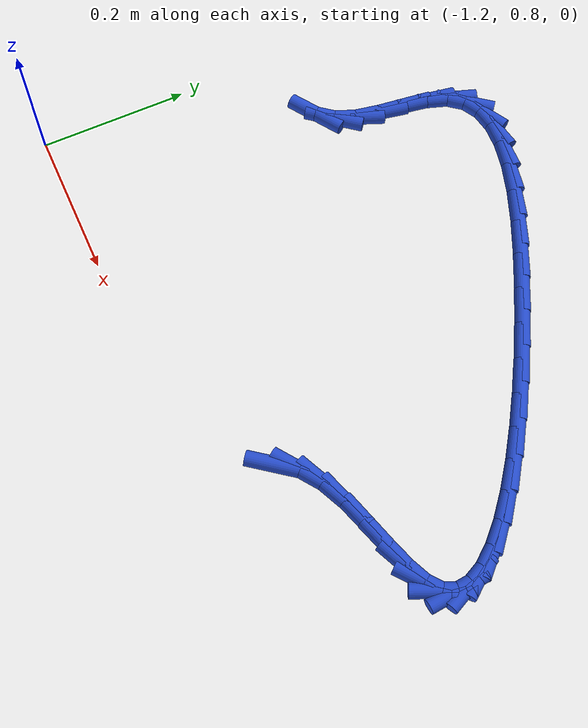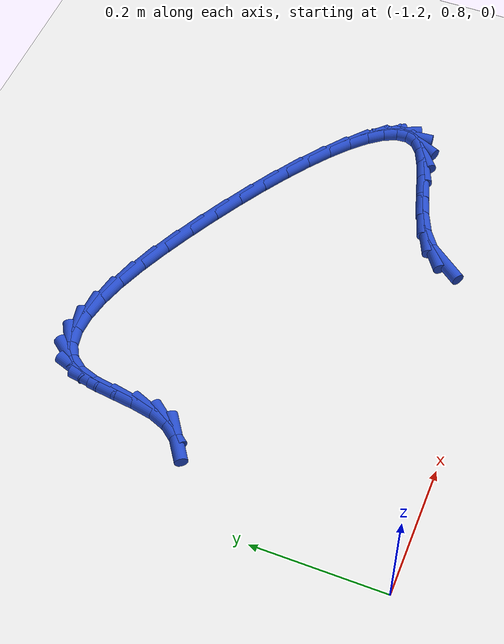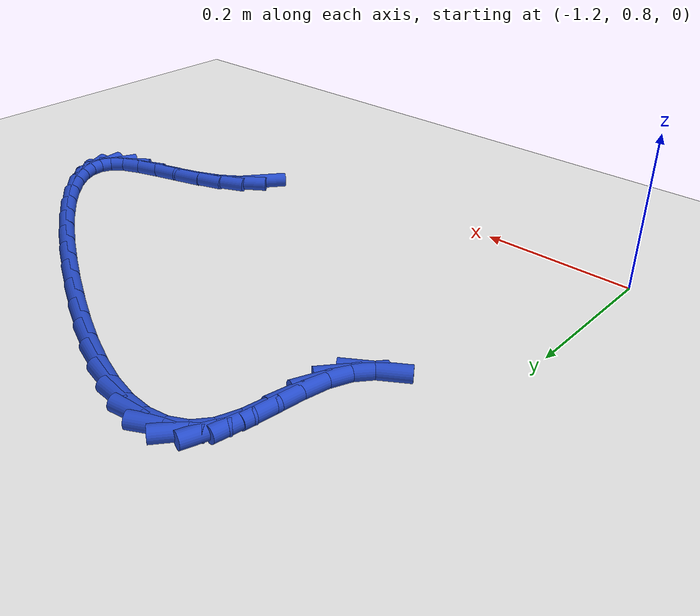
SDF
<sdf version="1.6">
 <world name="default">
  <model name="ground_plane">
   <static>1</static>
   <link name="link">
    <collision name="collision">
     <geometry><plane><normal>0 0 1</normal><size>100 100</size></plane></geometry>
     <surface><friction><ode><mu>100</mu><mu2>50</mu2></ode></friction></surface>
    </collision>
    <visual name="visual">
     <cast_shadows>0</cast_shadows>
     <geometry><plane><normal>0 0 1</normal><size>100 100</size></plane></geometry>
     <material>
      <script><uri>file://media/materials/scripts/gazebo.material</uri><name>Gazebo/WhiteGlow</name></script>
     </material>
    </visual>
   </link>
  </model>
  <model name="line">
   <link name="link_36">
    <pose>-0.6546489635974158 0.9010122230045716 0.01 0 1.57 0.9197699224399859</pose>
    <collision name="collision">
     <geometry><cylinder><radius>0.01</radius><length>0.08</length></cylinder></geometry>
    </collision>
    <visual name="visual">
     <material>
      <script><name>Gazebo/Blue</name><uri>file://media/materials/scripts/gazebo.material</uri></script>
     </material>
     <geometry><cylinder><radius>0.01</radius><length>0.08</length></cylinder></geometry>
    </visual>
   </link>
   <link name="link_37">
    <pose>-0.6371269394670711 0.9240122802838328 0.01 0 1.57 0.6194473717503187</pose>
    <collision name="collision">
     <geometry><cylinder><radius>0.01</radius><length>0.08</length></cylinder></geometry>
    </collision>
    <visual name="visual">
     <material>
      <script><name>Gazebo/Blue</name><uri>file://media/materials/scripts/gazebo.material</uri></script>
     </material>
     <geometry><cylinder><radius>0.01</radius><length>0.08</length></cylinder></geometry>
    </visual>
   </link>
   <link name="link_38">
    <pose>-0.6114537484375069 0.9423191922987368 0.01 0 1.57 0.42852501772104457</pose>
    <collision name="collision">
     <geometry><cylinder><radius>0.01</radius><length>0.08</length></cylinder></geometry>
    </collision>
    <visual name="visual">
     <material>
      <script><name>Gazebo/Blue</name><uri>file://media/materials/scripts/gazebo.material</uri></script>
     </material>
     <geometry><cylinder><radius>0.01</radius><length>0.08</length></cylinder></geometry>
    </visual>
   </link>
   <link name="link_39">
    <pose>-0.5798503829352134 0.9567567792665215 0.01 0 1.57 0.32914970800333143</pose>
    <collision name="collision">
     <geometry><cylinder><radius>0.01</radius><length>0.08</length></cylinder></geometry>
    </collision>
    <visual name="visual">
     <material>
      <script><name>Gazebo/Blue</name><uri>file://media/materials/scripts/gazebo.material</uri></script>
     </material>
     <geometry><cylinder><radius>0.01</radius><length>0.08</length></cylinder></geometry>
    </visual>
   </link>
   <link name="link_40">
    <pose>-0.5452840911622212 0.9685637635891405 0.01 0 1.57 0.2926945093638431</pose>
    <collision name="collision">
     <geometry><cylinder><radius>0.01</radius><length>0.08</length></cylinder></geometry>
    </collision>
    <visual name="visual">
     <material>
      <script><name>Gazebo/Blue</name><uri>file://media/materials/scripts/gazebo.material</uri></script>
     </material>
     <geometry><cylinder><radius>0.01</radius><length>0.08</length></cylinder></geometry>
    </visual>
   </link>
   <link name="link_41">
    <pose>-0.5107222753914705 0.9789789533286649 0.01 0 1.57 0.31410229428454683</pose>
    <collision name="collision">
     <geometry><cylinder><radius>0.01</radius><length>0.08</length></cylinder></geometry>
    </collision>
    <visual name="visual">
     <material>
      <script><name>Gazebo/Blue</name><uri>file://media/materials/scripts/gazebo.material</uri></script>
     </material>
     <geometry><cylinder><radius>0.01</radius><length>0.08</length></cylinder></geometry>
    </visual>
   </link>
   <link name="link_42">
    <pose>-0.4791323378959036 0.9892411565471664 0.01 0 1.57 0.4165214956059197</pose>
    <collision name="collision">
     <geometry><cylinder><radius>0.01</radius><length>0.08</length></cylinder></geometry>
    </collision>
    <visual name="visual">
     <material>
      <script><name>Gazebo/Blue</name><uri>file://media/materials/scripts/gazebo.material</uri></script>
     </material>
     <geometry><cylinder><radius>0.01</radius><length>0.08</length></cylinder></geometry>
    </visual>
   </link>
   <link name="link_43">
    <pose>-0.45348168094846103 1.0005891813067163 0.01 0 1.57 0.6797086663926685</pose>
    <collision name="collision">
     <geometry><cylinder><radius>0.01</radius><length>0.08</length></cylinder></geometry>
    </collision>
    <visual name="visual">
     <material>
      <script><name>Gazebo/Blue</name><uri>file://media/materials/scripts/gazebo.material</uri></script>
     </material>
     <geometry><cylinder><radius>0.01</radius><length>0.08</length></cylinder></geometry>
    </visual>
   </link>
   <link name="link_44">
    <pose>-0.43662278552695 1.0142141973778662 0.01 0 1.57 1.1543749748583172</pose>
    <collision name="collision">
     <geometry><cylinder><radius>0.01</radius><length>0.08</length></cylinder></geometry>
    </collision>
    <visual name="visual">
     <material>
      <script><name>Gazebo/Blue</name><uri>file://media/materials/scripts/gazebo.material</uri></script>
     </material>
     <geometry><cylinder><radius>0.01</radius><length>0.08</length></cylinder></geometry>
    </visual>
   </link>
   <link name="link_45">
    <pose>-0.4294260853999631 1.0304857570698576 0.01 0 1.57 -1.481563053469985</pose>
    <collision name="collision">
     <geometry><cylinder><radius>0.01</radius><length>0.08</length></cylinder></geometry>
    </collision>
    <visual name="visual">
     <material>
      <script><name>Gazebo/Blue</name><uri>file://media/materials/scripts/gazebo.material</uri></script>
     </material>
     <geometry><cylinder><radius>0.01</radius><length>0.08</length></cylinder></geometry>
    </visual>
   </link>
   <link name="link_46">
    <pose>-0.431089747169748 1.0490802082629678 0.01 0 1.57 -1.1313971508245861</pose>
    <collision name="collision">
     <geometry><cylinder><radius>0.01</radius><length>0.08</length></cylinder></geometry>
    </collision>
    <visual name="visual">
     <material>
      <script><name>Gazebo/Blue</name><uri>file://media/materials/scripts/gazebo.material</uri></script>
     </material>
     <geometry><cylinder><radius>0.01</radius><length>0.08</length></cylinder></geometry>
    </visual>
   </link>
   <link name="link_47">
    <pose>-0.440759533652331 1.069652175910996 0.01 0 1.57 -0.9224534851953125</pose>
    <collision name="collision">
     <geometry><cylinder><radius>0.01</radius><length>0.08</length></cylinder></geometry>
    </collision>
    <visual name="visual">
     <material>
      <script><name>Gazebo/Blue</name><uri>file://media/materials/scripts/gazebo.material</uri></script>
     </material>
     <geometry><cylinder><radius>0.01</radius><length>0.08</length></cylinder></geometry>
    </visual>
   </link>
   <link name="link_48">
    <pose>-0.45758120766373794 1.091856284967744 0.01 0 1.57 -0.7933694485484077</pose>
    <collision name="collision">
     <geometry><cylinder><radius>0.01</radius><length>0.08</length></cylinder></geometry>
    </collision>
    <visual name="visual">
     <material>
      <script><name>Gazebo/Blue</name><uri>file://media/materials/scripts/gazebo.material</uri></script>
     </material>
     <geometry><cylinder><radius>0.01</radius><length>0.08</length></cylinder></geometry>
    </visual>
   </link>
   <link name="link_49">
    <pose>-0.4807005320199945 1.115347160387011 0.01 0 1.57 -0.7076146568592331</pose>
    <collision name="collision">
     <geometry><cylinder><radius>0.01</radius><length>0.08</length></cylinder></geometry>
    </collision>
    <visual name="visual">
     <material>
      <script><name>Gazebo/Blue</name><uri>file://media/materials/scripts/gazebo.material</uri></script>
     </material>
     <geometry><cylinder><radius>0.01</radius><length>0.08</length></cylinder></geometry>
    </visual>
   </link>
   <link name="link_50">
    <pose>-0.509263269537127 1.1397794271225987 0.01 0 1.57 -0.646666313776083</pose>
    <collision name="collision">
     <geometry><cylinder><radius>0.01</radius><length>0.08</length></cylinder></geometry>
    </collision>
    <visual name="visual">
     <material>
      <script><name>Gazebo/Blue</name><uri>file://media/materials/scripts/gazebo.material</uri></script>
     </material>
     <geometry><cylinder><radius>0.01</radius><length>0.08</length></cylinder></geometry>
    </visual>
   </link>
   <link name="link_51">
    <pose>-0.5424151830311605 1.1648077101283063 0.01 0 1.57 -0.6007986333091562</pose>
    <collision name="collision">
     <geometry><cylinder><radius>0.01</radius><length>0.08</length></cylinder></geometry>
    </collision>
    <visual name="visual">
     <material>
      <script><name>Gazebo/Blue</name><uri>file://media/materials/scripts/gazebo.material</uri></script>
     </material>
     <geometry><cylinder><radius>0.01</radius><length>0.08</length></cylinder></geometry>
    </visual>
   </link>
   <link name="link_52">
    <pose>-0.5793020353181219 1.190086634357935 0.01 0 1.57 -0.5645348074314845</pose>
    <collision name="collision">
     <geometry><cylinder><radius>0.01</radius><length>0.08</length></cylinder></geometry>
    </collision>
    <visual name="visual">
     <material>
      <script><name>Gazebo/Blue</name><uri>file://media/materials/scripts/gazebo.material</uri></script>
     </material>
     <geometry><cylinder><radius>0.01</radius><length>0.08</length></cylinder></geometry>
    </visual>
   </link>
   <link name="link_53">
    <pose>-0.619069589214036 1.2152708247652846 0.01 0 1.57 -0.5345522174541816</pose>
    <collision name="collision">
     <geometry><cylinder><radius>0.01</radius><length>0.08</length></cylinder></geometry>
    </collision>
    <visual name="visual">
     <material>
      <script><name>Gazebo/Blue</name><uri>file://media/materials/scripts/gazebo.material</uri></script>
     </material>
     <geometry><cylinder><radius>0.01</radius><length>0.08</length></cylinder></geometry>
    </visual>
   </link>
   <link name="link_54">
    <pose>-0.6608636075349292 1.2400149063041555 0.01 0 1.57 -0.5086704039617261</pose>
    <collision name="collision">
     <geometry><cylinder><radius>0.01</radius><length>0.08</length></cylinder></geometry>
    </collision>
    <visual name="visual">
     <material>
      <script><name>Gazebo/Blue</name><uri>file://media/materials/scripts/gazebo.material</uri></script>
     </material>
     <geometry><cylinder><radius>0.01</radius><length>0.08</length></cylinder></geometry>
    </visual>
   </link>
   <link name="link_55">
    <pose>-0.7038298530968277 1.2639735039283484 0.01 0 1.57 -0.4852911438079115</pose>
    <collision name="collision">
     <geometry><cylinder><radius>0.01</radius><length>0.08</length></cylinder></geometry>
    </collision>
    <visual name="visual">
     <material>
      <script><name>Gazebo/Blue</name><uri>file://media/materials/scripts/gazebo.material</uri></script>
     </material>
     <geometry><cylinder><radius>0.01</radius><length>0.08</length></cylinder></geometry>
    </visual>
   </link>
   <link name="link_56">
    <pose>-0.7471146786405525 1.2867999608270342 0.01 0 1.57 -0.45991084315033526</pose>
    <collision name="collision">
     <geometry><cylinder><radius>0.01</radius><length>0.08</length></cylinder></geometry>
    </collision>
    <visual name="visual">
     <material>
      <script><name>Gazebo/Blue</name><uri>file://media/materials/scripts/gazebo.material</uri></script>
     </material>
     <geometry><cylinder><radius>0.01</radius><length>0.08</length></cylinder></geometry>
    </visual>
   </link>
   <link name="link_57">
    <pose>-0.7899289364574092 1.3080074781865307 0.01 0 1.57 -0.42450833262558463</pose>
    <collision name="collision">
     <geometry><cylinder><radius>0.01</radius><length>0.08</length></cylinder></geometry>
    </collision>
    <visual name="visual">
     <material>
      <script><name>Gazebo/Blue</name><uri>file://media/materials/scripts/gazebo.material</uri></script>
     </material>
     <geometry><cylinder><radius>0.01</radius><length>0.08</length></cylinder></geometry>
    </visual>
   </link>
   <link name="link_58">
    <pose>-0.8316052061031922 1.326844773138308 0.01 0 1.57 -0.3747156449709519</pose>
    <collision name="collision">
     <geometry><cylinder><radius>0.01</radius><length>0.08</length></cylinder></geometry>
    </collision>
    <visual name="visual">
     <material>
      <script><name>Gazebo/Blue</name><uri>file://media/materials/scripts/gazebo.material</uri></script>
     </material>
     <geometry><cylinder><radius>0.01</radius><length>0.08</length></cylinder></geometry>
    </visual>
   </link>
   <link name="link_59">
    <pose>-0.8714895710528862 1.342531222046853 0.01 0 1.57 -0.30423324147970765</pose>
    <collision name="collision">
     <geometry><cylinder><radius>0.01</radius><length>0.08</length></cylinder></geometry>
    </collision>
    <visual name="visual">
     <material>
      <script><name>Gazebo/Blue</name><uri>file://media/materials/scripts/gazebo.material</uri></script>
     </material>
     <geometry><cylinder><radius>0.01</radius><length>0.08</length></cylinder></geometry>
    </visual>
   </link>
   <link name="link_60">
    <pose>-0.9089281147814735 1.354286201276651 0.01 0 1.57 -0.2022944727932691</pose>
    <collision name="collision">
     <geometry><cylinder><radius>0.01</radius><length>0.08</length></cylinder></geometry>
    </collision>
    <visual name="visual">
     <material>
      <script><name>Gazebo/Blue</name><uri>file://media/materials/scripts/gazebo.material</uri></script>
     </material>
     <geometry><cylinder><radius>0.01</radius><length>0.08</length></cylinder></geometry>
    </visual>
   </link>
   <link name="link_61">
    <pose>-0.943266920763938 1.361329087192188 0.01 0 1.57 -0.050640377547561725</pose>
    <collision name="collision">
     <geometry><cylinder><radius>0.01</radius><length>0.08</length></cylinder></geometry>
    </collision>
    <visual name="visual">
     <material>
      <script><name>Gazebo/Blue</name><uri>file://media/materials/scripts/gazebo.material</uri></script>
     </material>
     <geometry><cylinder><radius>0.01</radius><length>0.08</length></cylinder></geometry>
    </visual>
   </link>
   <link name="link_62">
    <pose>-0.9738520724752634 1.3628792561579501 0.01 0 1.57 0.17850758811531217</pose>
    <collision name="collision">
     <geometry><cylinder><radius>0.01</radius><length>0.08</length></cylinder></geometry>
    </collision>
    <visual name="visual">
     <material>
      <script><name>Gazebo/Blue</name><uri>file://media/materials/scripts/gazebo.material</uri></script>
     </material>
     <geometry><cylinder><radius>0.01</radius><length>0.08</length></cylinder></geometry>
    </visual>
   </link>
   <link name="link_63">
    <pose>-1.0000296533904327 1.3581560845384228 0.01 0 1.57 0.5087606316774902</pose>
    <collision name="collision">
     <geometry><cylinder><radius>0.01</radius><length>0.08</length></cylinder></geometry>
    </collision>
    <visual name="visual">
     <material>
      <script><name>Gazebo/Blue</name><uri>file://media/materials/scripts/gazebo.material</uri></script>
     </material>
     <geometry><cylinder><radius>0.01</radius><length>0.08</length></cylinder></geometry>
    </visual>
   </link>
   <link name="link_64">
    <pose>-1.0211457469844292 1.3463789486980922 0.01 0 1.57 0.9050958096649662</pose>
    <collision name="collision">
     <geometry><cylinder><radius>0.01</radius><length>0.08</length></cylinder></geometry>
    </collision>
    <visual name="visual">
     <material>
      <script><name>Gazebo/Blue</name><uri>file://media/materials/scripts/gazebo.material</uri></script>
     </material>
     <geometry><cylinder><radius>0.01</radius><length>0.08</length></cylinder></geometry>
    </visual>
   </link>
   <link name="link_65">
    <pose>-1.0365464367322366 1.3267672250014442 0.01 0 1.57 1.2427885400682162</pose>
    <collision name="collision">
     <geometry><cylinder><radius>0.01</radius><length>0.08</length></cylinder></geometry>
    </collision>
    <visual name="visual">
     <material>
      <script><name>Gazebo/Blue</name><uri>file://media/materials/scripts/gazebo.material</uri></script>
     </material>
     <geometry><cylinder><radius>0.01</radius><length>0.08</length></cylinder></geometry>
    </visual>
   </link>
   <link name="link_66">
    <pose>-1.0459744554604402 1.2990622392750586 0.01 0 1.57 1.405952866264438</pose>
    <collision name="collision">
     <geometry><cylinder><radius>0.01</radius><length>0.08</length></cylinder></geometry>
    </collision>
    <visual name="visual">
     <material>
      <script><name>Gazebo/Blue</name><uri>file://media/materials/scripts/gazebo.material</uri></script>
     </material>
     <geometry><cylinder><radius>0.01</radius><length>0.08</length></cylinder></geometry>
    </visual>
   </link>
   <link name="link_67">
    <pose>-1.0514697618258753 1.2660282285933602 0.01 0 1.57 1.4432055809954663</pose>
    <collision name="collision">
     <geometry><cylinder><radius>0.01</radius><length>0.08</length></cylinder></geometry>
    </collision>
    <visual name="visual">
     <material>
      <script><name>Gazebo/Blue</name><uri>file://media/materials/scripts/gazebo.material</uri></script>
     </material>
     <geometry><cylinder><radius>0.01</radius><length>0.08</length></cylinder></geometry>
    </visual>
   </link>
   <link name="link_68">
    <pose>-1.0558973680863801 1.2315151151113182 0.01 0 1.57 1.3794566383342595</pose>
    <collision name="collision">
     <geometry><cylinder><radius>0.01</radius><length>0.08</length></cylinder></geometry>
    </collision>
    <visual name="visual">
     <material>
      <script><name>Gazebo/Blue</name><uri>file://media/materials/scripts/gazebo.material</uri></script>
     </material>
     <geometry><cylinder><radius>0.01</radius><length>0.08</length></cylinder></geometry>
    </visual>
   </link>
   <link name="link_69">
    <pose>-1.062123360088504 1.1993742337154465 0.01 0 1.57 1.1851676236772388</pose>
    <collision name="collision">
     <geometry><cylinder><radius>0.01</radius><length>0.08</length></cylinder></geometry>
    </collision>
    <visual name="visual">
     <material>
      <script><name>Gazebo/Blue</name><uri>file://media/materials/scripts/gazebo.material</uri></script>
     </material>
     <geometry><cylinder><radius>0.01</radius><length>0.08</length></cylinder></geometry>
    </visual>
   </link>
   <link name="link_70">
    <pose>-1.072776808039308 1.1731312504772082 0.01 0 1.57 0.895990376325215</pose>
    <collision name="collision">
     <geometry><cylinder><radius>0.01</radius><length>0.08</length></cylinder></geometry>
    </collision>
    <visual name="visual">
     <material>
      <script><name>Gazebo/Blue</name><uri>file://media/materials/scripts/gazebo.material</uri></script>
     </material>
     <geometry><cylinder><radius>0.01</radius><length>0.08</length></cylinder></geometry>
    </visual>
   </link>
   <link name="link_71">
    <pose>-1.0884611127939792 1.1535284820700087 0.01 0 1.57 0.5915606954719248</pose>
    <collision name="collision">
     <geometry><cylinder><radius>0.01</radius><length>0.08</length></cylinder></geometry>
    </collision>
    <visual name="visual">
     <material>
      <script><name>Gazebo/Blue</name><uri>file://media/materials/scripts/gazebo.material</uri></script>
     </material>
     <geometry><cylinder><radius>0.01</radius><length>0.08</length></cylinder></geometry>
    </visual>
   </link>
  </model>
 </world>
</sdf>
